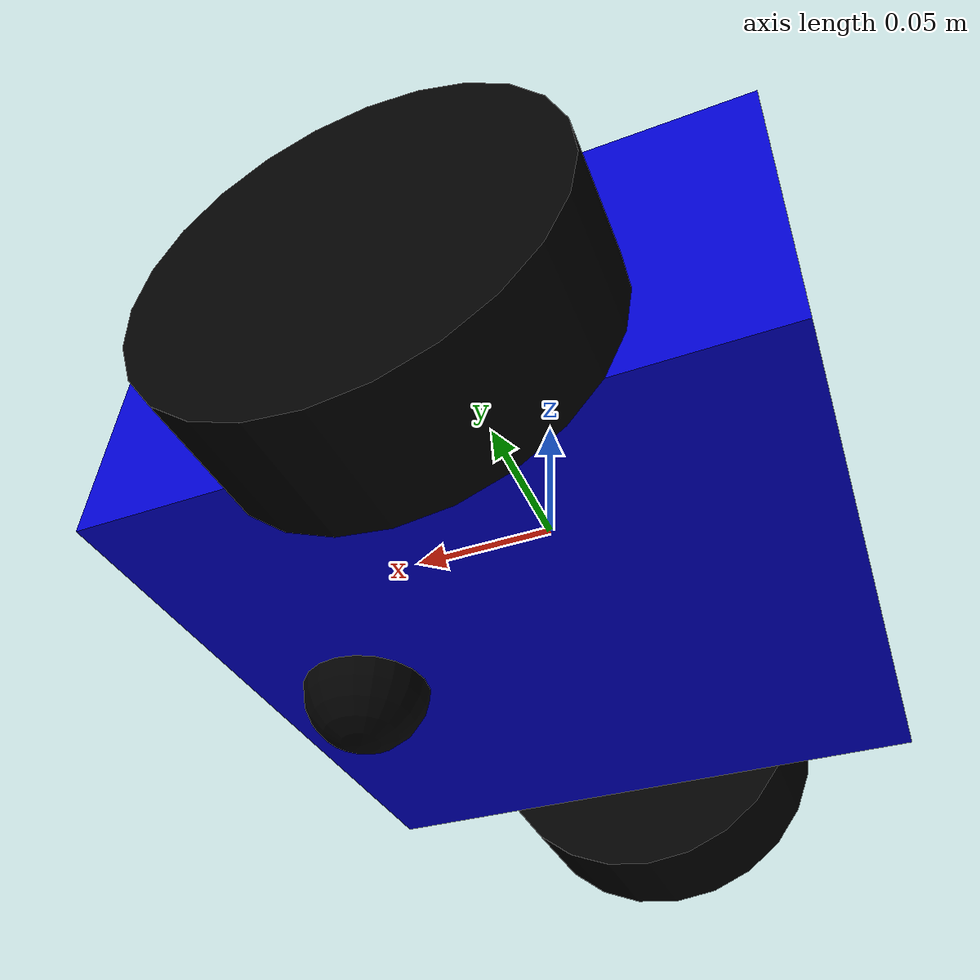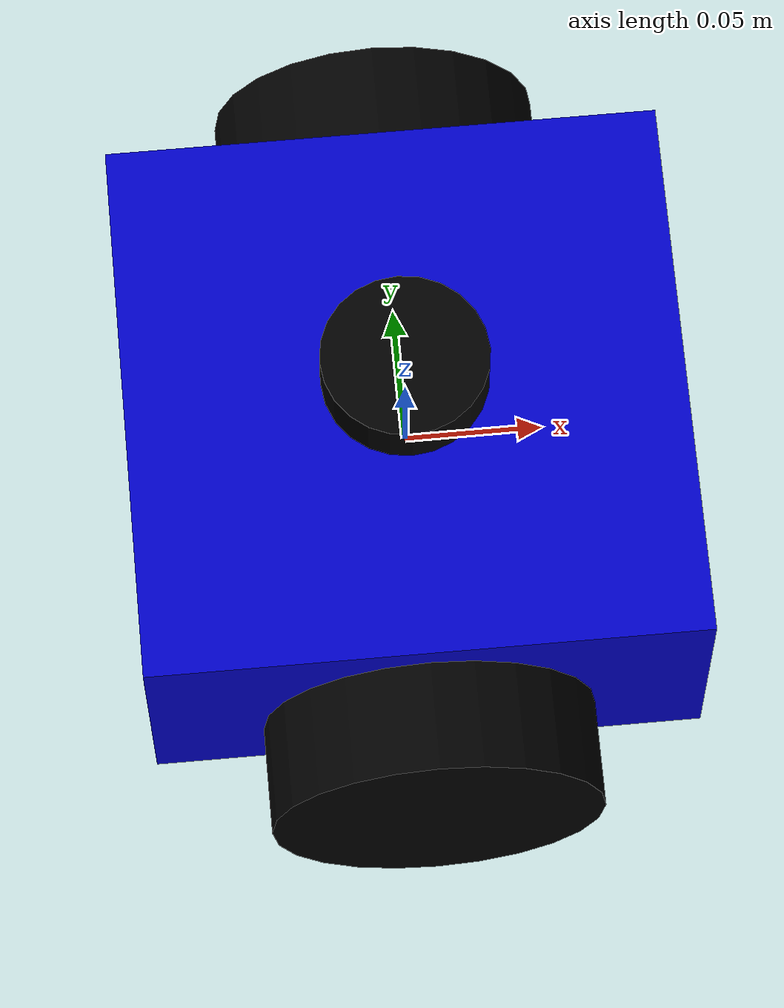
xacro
<?xml version="1.0"?>
<robot name="custom_bot" xmlns:xacro="http://www.ros.org/wiki/xacro">

  <!-- Materials -->
  <material name="blue">
    <color rgba="0 0 0.8 1"/>
  </material>
  <material name="black">
    <color rgba="0 0 0 1"/>
  </material>

  <!-- Robot Base -->
  <link name="base_link">
    <visual>
      <geometry>
        <box size="0.2 0.2 0.1"/>
      </geometry>
      <material name="blue"/>
    </visual>
    <collision>
      <geometry>
        <box size="0.2 0.2 0.1"/>
      </geometry>
    </collision>
    <inertial>
      <mass value="1.0"/>
      <inertia ixx="0.0016667" ixy="0" ixz="0" iyy="0.0016667" iyz="0" izz="0.0016667"/>
    </inertial>
  </link>

  <!-- Wheels -->
  <link name="left_wheel">
    <visual>
      <geometry>
        <cylinder radius="0.06" length="0.039"/>
      </geometry>
      <material name="black"/>
    </visual>
    <collision>
      <geometry>
        <cylinder radius="0.06" length="0.039"/>
      </geometry>
    </collision>
    <inertial>
      <mass value="0.5"/>
      <inertia ixx="0.000405" ixy="0" ixz="0" iyy="0.000405" iyz="0" izz="0.00075"/>
    </inertial>
  </link>

  <joint name="left_wheel_joint" type="continuous">
    <parent link="base_link"/>
    <child link="left_wheel"/>
    <origin xyz="0 0.1195 -0.02" rpy="-1.57 0 0"/>
    <axis xyz="0 0 1"/>
  </joint>

  <link name="right_wheel">
    <visual>
      <geometry>
        <cylinder radius="0.06" length="0.039"/>
      </geometry>
      <material name="black"/>
    </visual>
    <collision>
      <geometry>
        <cylinder radius="0.06" length="0.039"/>
      </geometry>
    </collision>
    <inertial>
      <mass value="0.5"/>
      <inertia ixx="0.000405" ixy="0" ixz="0" iyy="0.000405" iyz="0" izz="0.00075"/>
    </inertial>
  </link>

  <joint name="right_wheel_joint" type="continuous">
    <parent link="base_link"/>
    <child link="right_wheel"/>
    <origin xyz="0 -0.1195 -0.02" rpy="1.57 0 0"/>
    <axis xyz="0 0 1"/>
  </joint>

  <!-- Caster wheel -->
  <link name="caster">
    <visual>
      <geometry>
        <sphere radius="0.021"/>
      </geometry>
      <material name="black"/>
    </visual>
    <collision>
      <geometry>
        <sphere radius="0.021"/>
      </geometry>
    </collision>
    <inertial>
      <mass value="0.1"/>
      <inertia ixx="0.00001" ixy="0" ixz="0" iyy="0.00001" iyz="0" izz="0.00001"/>
    </inertial>
  </link>

  <joint name="caster_joint" type="fixed">
    <parent link="base_link"/>
    <child link="caster"/>
    <origin xyz="0.065 0 -0.05"/>
  </joint>

  <!-- Sensors -->
  <!-- LiDAR -->
  <link name="lidar_link">
    <visual>
      <geometry>
        <cylinder radius="0.03" length="0.02"/>
      </geometry>
      <material name="black"/>
    </visual>
    <collision>
      <geometry>
        <cylinder radius="0.03" length="0.02"/>
      </geometry>
    </collision>
    <inertial>
      <mass value="0.1"/>
      <inertia ixx="0.000025" ixy="0" ixz="0" iyy="0.000025" iyz="0" izz="0.000045"/>
    </inertial>
  </link>

  <joint name="lidar_joint" type="fixed">
    <parent link="base_link"/>
    <child link="lidar_link"/>
    <origin xyz="0 0 0.07"/>
  </joint>

  <!-- Camera -->
  <link name="camera_link">
    <visual>
      <geometry>
        <box size="0.03 0.03 0.03"/>
      </geometry>
      <material name="black"/>
    </visual>
    <collision>
      <geometry>
        <box size="0.03 0.03 0.03"/>
      </geometry>
    </collision>
    <inertial>
      <mass value="0.1"/>
      <inertia ixx="0.000015" ixy="0" ixz="0" iyy="0.000015" iyz="0" izz="0.000015"/>
    </inertial>
  </link>

  <joint name="camera_joint" type="fixed">
    <parent link="base_link"/>
    <child link="camera_link"/>
    <origin xyz="0.08 0 0.02"/>
  </joint>

  <!-- Gazebo plugins -->
  <gazebo>
    <plugin name="differential_drive_controller" filename="libgazebo_ros_diff_drive.so">
      <left_joint>left_wheel_joint</left_joint>
      <right_joint>right_wheel_joint</right_joint>
      <wheel_separation>0.239</wheel_separation>
      <wheel_diameter>0.12</wheel_diameter>
      <max_wheel_acceleration>1.0</max_wheel_acceleration>
      <max_wheel_torque>20.0</max_wheel_torque>
      <publish_odom>true</publish_odom>
      <publish_odom_tf>true</publish_odom_tf>
      <publish_wheel_tf>true</publish_wheel_tf>
      <odometry_frame>odom</odometry_frame>
      <robot_base_frame>base_link</robot_base_frame>
    </plugin>
  </gazebo>

  <gazebo reference="lidar_link">
    <sensor type="ray" name="lidar">
      <pose>0 0 0 0 0 0</pose>
      <visualize>true</visualize>
      <update_rate>10</update_rate>
      <ray>
        <scan>
          <horizontal>
            <samples>360</samples>
            <resolution>1</resolution>
            <min_angle>-3.14159</min_angle>
            <max_angle>3.14159</max_angle>
          </horizontal>
        </scan>
        <range>
          <min>0.3</min>
          <max>12.0</max>
          <resolution>0.01</resolution>
        </range>
      </ray>
      <plugin name="laser_controller" filename="libgazebo_ros_ray_sensor.so">
        <ros>
          <argument>~/out:=scan</argument>
        </ros>
        <output_type>sensor_msgs/LaserScan</output_type>
        <frame_name>lidar_link</frame_name>
      </plugin>
    </sensor>
  </gazebo>

  <gazebo reference="camera_link">
    <sensor type="camera" name="camera">
      <update_rate>30.0</update_rate>
      <camera name="head">
        <horizontal_fov>1.3962634</horizontal_fov>
        <image>
          <width>800</width>
          <height>600</height>
          <format>R8G8B8</format>
        </image>
        <clip>
          <near>0.02</near>
          <far>300</far>
        </clip>
      </camera>
      <plugin name="camera_controller" filename="libgazebo_ros_camera.so">
        <alwaysOn>true</alwaysOn>
        <updateRate>0.0</updateRate>
        <cameraName>camera</cameraName>
        <imageTopicName>image_raw</imageTopicName>
        <cameraInfoTopicName>camera_info</cameraInfoTopicName>
        <frameName>camera_link</frameName>
      </plugin>
    </sensor>
  </gazebo>

</robot>
